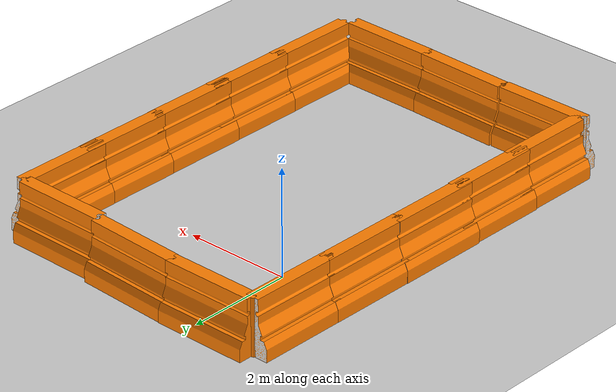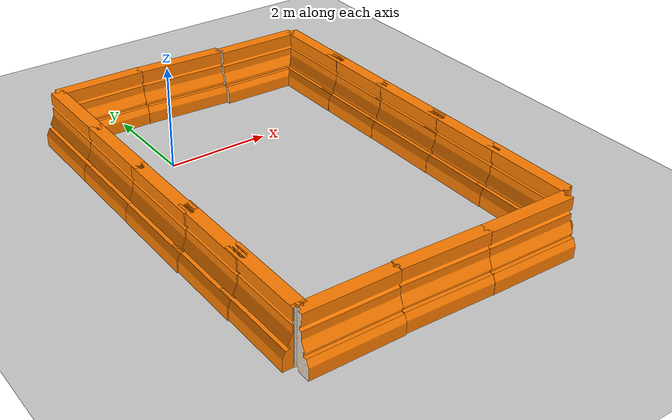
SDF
<sdf version="1.4">
 <world name="default">
  <light name="sun" type="directional">
   <pose>0 0 10 0 -0 0</pose>
   <diffuse>0.8 0.8 0.8 1</diffuse>
   <specular>0.2 0.2 0.2 1</specular>
   <attenuation>
    <range>1000</range>
    <constant>0.9</constant>
    <linear>0.01</linear>
    <quadratic>0.001</quadratic>
   </attenuation>
   <direction>-0.5 0.1 -0.9</direction>
  </light>
  <model name="ground_plane">
   <static>1</static>
   <link name="link">
    <collision name="collision">
     <geometry><plane><normal>0 0 1</normal><size>100 100</size></plane></geometry>
     <surface><friction><ode><mu>100</mu><mu2>50</mu2></ode></friction></surface>
    </collision>
    <visual name="visual">
     <cast_shadows>0</cast_shadows>
     <geometry><plane><normal>0 0 1</normal><size>100 100</size></plane></geometry>
     <material>
      <script><uri>file://media/materials/scripts/gazebo.material</uri><name>Gazebo/Grey</name></script>
     </material>
    </visual>
    <velocity_decay><linear>0</linear><angular>0</angular></velocity_decay>
   </link>
  </model>
  <physics type="ode">
   <max_step_size>0.001</max_step_size>
   <real_time_factor>1</real_time_factor>
   <real_time_update_rate>1000</real_time_update_rate>
   <gravity>0 0 -9.8</gravity>
  </physics>
  <scene><ambient>0.4 0.4 0.4 1</ambient><background>0.7 0.7 0.7 1</background><shadows>1</shadows></scene>
  <spherical_coordinates>
   <surface_model>EARTH_WGS84</surface_model>
   <latitude_deg>0</latitude_deg>
   <longitude_deg>0</longitude_deg>
   <elevation>0</elevation>
   <heading_deg>0</heading_deg>
  </spherical_coordinates>
  <model name="drc_practice_organge_jersey_barrier_0">
   <static>1</static>
   <link name="link">
    <visual name="visual">
     <geometry>
      <mesh><uri>model://drc_practice_orange_jersey_barrier/meshes/jersey_barrier.dae</uri></mesh>
     </geometry>
    </visual>
    <collision name="collision">
     <geometry>
      <mesh><uri>model://drc_practice_orange_jersey_barrier/meshes/jersey_barrier.dae</uri></mesh>
     </geometry>
    </collision>
    <velocity_decay><linear>0</linear><angular>0</angular></velocity_decay>
   </link>
   <pose>4 -5 0 0 -0 0</pose>
  </model>
  <model name="drc_practice_organge_jersey_barrier_1">
   <static>1</static>
   <link name="link">
    <visual name="visual">
     <geometry>
      <mesh><uri>model://drc_practice_orange_jersey_barrier/meshes/jersey_barrier.dae</uri></mesh>
     </geometry>
    </visual>
    <collision name="collision">
     <geometry>
      <mesh><uri>model://drc_practice_orange_jersey_barrier/meshes/jersey_barrier.dae</uri></mesh>
     </geometry>
    </collision>
    <velocity_decay><linear>0</linear><angular>0</angular></velocity_decay>
   </link>
   <pose>4 -3.41837 0 0 -0 0</pose>
  </model>
  <model name="drc_practice_organge_jersey_barrier_2">
   <static>1</static>
   <link name="link">
    <visual name="visual">
     <geometry>
      <mesh><uri>model://drc_practice_orange_jersey_barrier/meshes/jersey_barrier.dae</uri></mesh>
     </geometry>
    </visual>
    <collision name="collision">
     <geometry>
      <mesh><uri>model://drc_practice_orange_jersey_barrier/meshes/jersey_barrier.dae</uri></mesh>
     </geometry>
    </collision>
    <velocity_decay><linear>0</linear><angular>0</angular></velocity_decay>
   </link>
   <pose>4 -2 0 0 -0 0</pose>
  </model>
  <model name="drc_practice_organge_jersey_barrier_3">
   <static>1</static>
   <link name="link">
    <visual name="visual">
     <geometry>
      <mesh><uri>model://drc_practice_orange_jersey_barrier/meshes/jersey_barrier.dae</uri></mesh>
     </geometry>
    </visual>
    <collision name="collision">
     <geometry>
      <mesh><uri>model://drc_practice_orange_jersey_barrier/meshes/jersey_barrier.dae</uri></mesh>
     </geometry>
    </collision>
    <velocity_decay><linear>0</linear><angular>0</angular></velocity_decay>
   </link>
   <pose>4 -0.403196 0 0 -0 0</pose>
  </model>
  <model name="drc_practice_organge_jersey_barrier_5">
   <static>1</static>
   <link name="link">
    <visual name="visual">
     <geometry>
      <mesh><uri>model://drc_practice_orange_jersey_barrier/meshes/jersey_barrier.dae</uri></mesh>
     </geometry>
    </visual>
    <collision name="collision">
     <geometry>
      <mesh><uri>model://drc_practice_orange_jersey_barrier/meshes/jersey_barrier.dae</uri></mesh>
     </geometry>
    </collision>
    <velocity_decay><linear>0</linear><angular>0</angular></velocity_decay>
   </link>
   <pose>4 1 0 0 -0 0</pose>
  </model>
  <model name="drc_practice_organge_jersey_barrier_6">
   <static>1</static>
   <link name="link">
    <visual name="visual">
     <geometry>
      <mesh><uri>model://drc_practice_orange_jersey_barrier/meshes/jersey_barrier.dae</uri></mesh>
     </geometry>
    </visual>
    <collision name="collision">
     <geometry>
      <mesh><uri>model://drc_practice_orange_jersey_barrier/meshes/jersey_barrier.dae</uri></mesh>
     </geometry>
    </collision>
    <velocity_decay><linear>0</linear><angular>0</angular></velocity_decay>
   </link>
   <pose>3.10004 1.85751 0 0 -0 1.56234</pose>
  </model>
  <model name="drc_practice_organge_jersey_barrier">
   <static>1</static>
   <link name="link">
    <visual name="visual">
     <geometry>
      <mesh><uri>model://drc_practice_orange_jersey_barrier/meshes/jersey_barrier.dae</uri></mesh>
     </geometry>
    </visual>
    <collision name="collision">
     <geometry>
      <mesh><uri>model://drc_practice_orange_jersey_barrier/meshes/jersey_barrier.dae</uri></mesh>
     </geometry>
    </collision>
    <velocity_decay><linear>0</linear><angular>0</angular></velocity_decay>
   </link>
   <pose>-1.28319 1.18185 0 0 -0 0</pose>
  </model>
  <model name="drc_practice_organge_jersey_barrier_4">
   <static>1</static>
   <link name="link">
    <visual name="visual">
     <geometry>
      <mesh><uri>model://drc_practice_orange_jersey_barrier/meshes/jersey_barrier.dae</uri></mesh>
     </geometry>
    </visual>
    <collision name="collision">
     <geometry>
      <mesh><uri>model://drc_practice_orange_jersey_barrier/meshes/jersey_barrier.dae</uri></mesh>
     </geometry>
    </collision>
    <velocity_decay><linear>0</linear><angular>0</angular></velocity_decay>
   </link>
   <pose>-1.2933 -0.448261 0 0 -0 0</pose>
  </model>
  <model name="drc_practice_organge_jersey_barrier_7">
   <static>1</static>
   <link name="link">
    <visual name="visual">
     <geometry>
      <mesh><uri>model://drc_practice_orange_jersey_barrier/meshes/jersey_barrier.dae</uri></mesh>
     </geometry>
    </visual>
    <collision name="collision">
     <geometry>
      <mesh><uri>model://drc_practice_orange_jersey_barrier/meshes/jersey_barrier.dae</uri></mesh>
     </geometry>
    </collision>
    <velocity_decay><linear>0</linear><angular>0</angular></velocity_decay>
   </link>
   <pose>-1.30667 -2.09142 0 0 -0 0</pose>
  </model>
  <model name="drc_practice_organge_jersey_barrier_8">
   <static>1</static>
   <link name="link">
    <visual name="visual">
     <geometry>
      <mesh><uri>model://drc_practice_orange_jersey_barrier/meshes/jersey_barrier.dae</uri></mesh>
     </geometry>
    </visual>
    <collision name="collision">
     <geometry>
      <mesh><uri>model://drc_practice_orange_jersey_barrier/meshes/jersey_barrier.dae</uri></mesh>
     </geometry>
    </collision>
    <velocity_decay><linear>0</linear><angular>0</angular></velocity_decay>
   </link>
   <pose>1.34378 1.984 0 0 0 -1.61731</pose>
  </model>
  <model name="drc_practice_organge_jersey_barrier_9">
   <static>1</static>
   <link name="link">
    <visual name="visual">
     <geometry>
      <mesh><uri>model://drc_practice_orange_jersey_barrier/meshes/jersey_barrier.dae</uri></mesh>
     </geometry>
    </visual>
    <collision name="collision">
     <geometry>
      <mesh><uri>model://drc_practice_orange_jersey_barrier/meshes/jersey_barrier.dae</uri></mesh>
     </geometry>
    </collision>
    <velocity_decay><linear>0</linear><angular>0</angular></velocity_decay>
   </link>
   <pose>-0.395365 2.03827 0 0 0 -1.56731</pose>
  </model>
  <model name="drc_practice_organge_jersey_barrier_10">
   <static>1</static>
   <link name="link">
    <visual name="visual">
     <geometry>
      <mesh><uri>model://drc_practice_orange_jersey_barrier/meshes/jersey_barrier.dae</uri></mesh>
     </geometry>
    </visual>
    <collision name="collision">
     <geometry>
      <mesh><uri>model://drc_practice_orange_jersey_barrier/meshes/jersey_barrier.dae</uri></mesh>
     </geometry>
    </collision>
    <velocity_decay><linear>0</linear><angular>0</angular></velocity_decay>
   </link>
   <pose>-1.29116 -3.57442 0 0 -0 0</pose>
  </model>
  <model name="drc_practice_organge_jersey_barrier_11">
   <static>1</static>
   <link name="link">
    <visual name="visual">
     <geometry>
      <mesh><uri>model://drc_practice_orange_jersey_barrier/meshes/jersey_barrier.dae</uri></mesh>
     </geometry>
    </visual>
    <collision name="collision">
     <geometry>
      <mesh><uri>model://drc_practice_orange_jersey_barrier/meshes/jersey_barrier.dae</uri></mesh>
     </geometry>
    </collision>
    <velocity_decay><linear>0</linear><angular>0</angular></velocity_decay>
   </link>
   <pose>-1.27916 -5 0 0 -0 0</pose>
  </model>
  <model name="drc_practice_organge_jersey_barrier_12">
   <static>1</static>
   <link name="link">
    <visual name="visual">
     <geometry>
      <mesh><uri>model://drc_practice_orange_jersey_barrier/meshes/jersey_barrier.dae</uri></mesh>
     </geometry>
    </visual>
    <collision name="collision">
     <geometry>
      <mesh><uri>model://drc_practice_orange_jersey_barrier/meshes/jersey_barrier.dae</uri></mesh>
     </geometry>
    </collision>
    <velocity_decay><linear>0</linear><angular>0</angular></velocity_decay>
   </link>
   <pose>3 -6 0 0 0 -1.58003</pose>
  </model>
  <model name="drc_practice_organge_jersey_barrier_13">
   <static>1</static>
   <link name="link">
    <visual name="visual">
     <geometry>
      <mesh><uri>model://drc_practice_orange_jersey_barrier/meshes/jersey_barrier.dae</uri></mesh>
     </geometry>
    </visual>
    <collision name="collision">
     <geometry>
      <mesh><uri>model://drc_practice_orange_jersey_barrier/meshes/jersey_barrier.dae</uri></mesh>
     </geometry>
    </collision>
    <velocity_decay><linear>0</linear><angular>0</angular></velocity_decay>
   </link>
   <pose>1.27602 -5.95608 0 0 0 -1.59874</pose>
  </model>
  <model name="drc_practice_organge_jersey_barrier_14">
   <static>1</static>
   <link name="link">
    <visual name="visual">
     <geometry>
      <mesh><uri>model://drc_practice_orange_jersey_barrier/meshes/jersey_barrier.dae</uri></mesh>
     </geometry>
    </visual>
    <collision name="collision">
     <geometry>
      <mesh><uri>model://drc_practice_orange_jersey_barrier/meshes/jersey_barrier.dae</uri></mesh>
     </geometry>
    </collision>
    <velocity_decay><linear>0</linear><angular>0</angular></velocity_decay>
   </link>
   <pose>-0.507458 -5.94161 0 0 -0 1.56929</pose>
  </model>
 </world>
</sdf>
